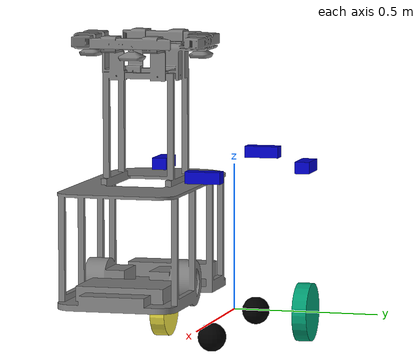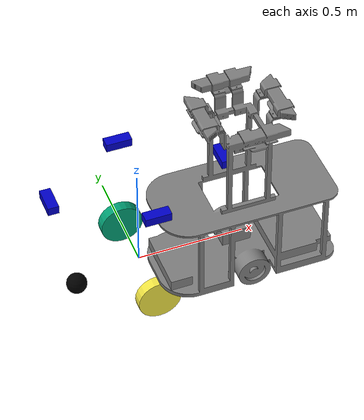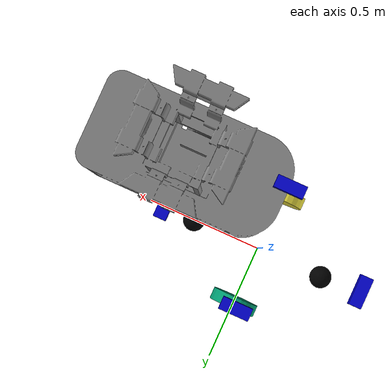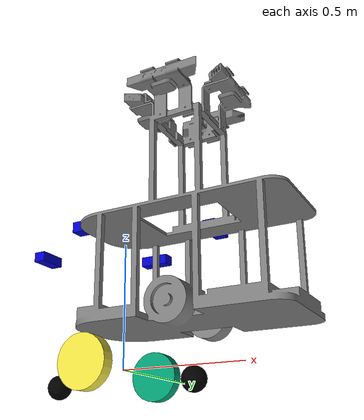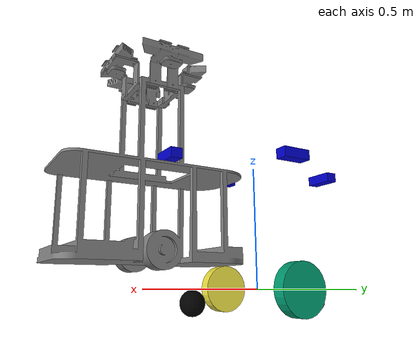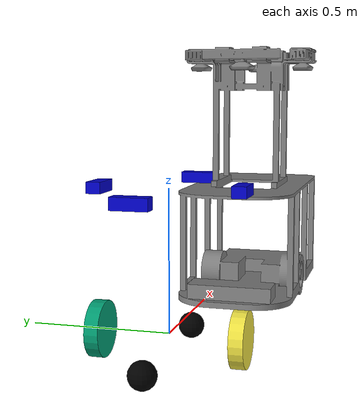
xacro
<?xml version="1.0"?>
<robot xmlns:xacro="http://www.ros.org/wiki/xacro" name="agv_robot">

  <xacro:property name="wheel_radius" value="0.1" />
  <xacro:property name="wheel_width" value="0.05" />

  <link name="base_footprint"/>
  <joint name="base_joint" type="fixed">
    <parent link="base_footprint"/>
    <child link="base_link"/>
    <origin xyz="0 0 0.1" rpy="0 0 0"/>
  </joint>

  <link name="base_link">
    <visual>
      <origin xyz="0 0 0" rpy="0 0 0"/>
      <geometry><mesh filename="file://$(find agv_sim)/meshes/agv_acs.stl" scale="0.001 0.001 0.001"/></geometry>
      <material name="grey"><color rgba="0.5 0.5 0.5 1.0"/></material>
    </visual>
    <collision><geometry><box size="0.8 0.5 0.3"/></geometry></collision>
    <inertial><mass value="25.0"/><inertia ixx="0.5" ixy="0.0" ixz="0.0" iyy="0.5" iyz="0.0" izz="0.5"/></inertial>
  </link>

  <xacro:macro name="wheel" params="name y">
    <link name="${name}_link">
      <visual><origin xyz="0 0 0" rpy="${pi/2} 0 0"/><geometry><cylinder radius="${wheel_radius}" length="${wheel_width}"/></geometry></visual>
      <collision><origin xyz="0 0 0" rpy="${pi/2} 0 0"/><geometry><cylinder radius="${wheel_radius}" length="${wheel_width}"/></geometry></collision>
      <inertial><mass value="2.0"/><inertia ixx="0.01" ixy="0" ixz="0" iyy="0.01" iyz="0" izz="0.01"/></inertial>
    </link>
    <joint name="${name}_joint" type="continuous">
      <parent link="base_link"/><child link="${name}_link"/><origin xyz="0 ${y} -0.1" rpy="0 0 0"/><axis xyz="0 1 0"/>
    </joint>
  </xacro:macro>

  <xacro:wheel name="left_wheel"  y="0.25"/>
  <xacro:wheel name="right_wheel" y="-0.25"/>

  <xacro:macro name="caster" params="name x">
    <link name="${name}_link">
      <visual><geometry><sphere radius="0.048"/></geometry><material name="black"><color rgba="0 0 0 1"/></material></visual>
      <collision><geometry><sphere radius="0.048"/></geometry></collision>
      <inertial><mass value="0.5"/><inertia ixx="0.001" ixy="0" ixz="0" iyy="0.001" iyz="0" izz="0.001"/></inertial>
    </link>
    <joint name="${name}_joint" type="fixed">
      <parent link="base_link"/><child link="${name}_link"/><origin xyz="${x} 0 -0.15" rpy="0 0 0"/>
    </joint>
    <gazebo reference="${name}_link">
      <mu1>0.0</mu1><mu2>0.0</mu2>
      <material>Gazebo/Black</material>
    </gazebo>
  </xacro:macro>

  <xacro:caster name="front_caster" x="0.3"/>
  <xacro:caster name="rear_caster" x="-0.3"/>

  <!-- Parent frame untuk semua kamera -->
  <link name="camera_link"/>
  <joint name="camera_joint" type="fixed">
    <parent link="base_link"/>
    <child link="camera_link"/>
    <origin xyz="0 0 0" rpy="0 0 0"/>
  </joint>

  <xacro:macro name="kinect_v1" params="name x y yaw topic">
    <!-- Link fisik kamera -->
    <link name="${name}_link">
      <visual><geometry><box size="0.05 0.12 0.04"/></geometry><material name="blue"><color rgba="0 0 0.8 1"/></material></visual>
    </link>
    <joint name="${name}_joint" type="fixed">
      <parent link="camera_link"/><child link="${name}_link"/><origin xyz="${x} ${y} 0.4" rpy="0 0 ${yaw}"/>
    </joint>

    <!-- Optical frame: rotasi dari link frame (x-forward,y-left,z-up) ke optical (z-forward,x-right,y-down) -->
    <link name="${name}_optical"/>
    <joint name="${name}_optical_joint" type="fixed">
      <parent link="${name}_link"/>
      <child link="${name}_optical"/>
      <origin xyz="0 0 0" rpy="${-pi/2} 0 ${-pi/2}"/>
    </joint>

    <gazebo reference="${name}_link">
      <sensor name="${name}" type="depth_camera">
        <update_rate>20</update_rate>
        <topic>${topic}</topic>
        <!-- Publish point cloud dalam optical frame agar TF2 bisa transform ke base_link -->
        <gz_frame_id>${name}_optical</gz_frame_id>
        <camera><horizontal_fov>1.047</horizontal_fov><image><width>640</width><height>480</height></image><clip><near>0.5</near><far>8.0</far></clip></camera>
      </sensor>
    </gazebo>
  </xacro:macro>

  <xacro:kinect_v1 name="camera_link_1" x="0.4"  y="0.0"  yaw="0.0"     topic="cloud_in1"/>
  <xacro:kinect_v1 name="camera_link_2" x="-0.4" y="0.0"  yaw="3.1415"  topic="cloud_in2"/>
  <xacro:kinect_v1 name="camera_link_3" x="0.0"  y="0.25" yaw="1.5708"  topic="cloud_in3"/>
  <xacro:kinect_v1 name="camera_link_4" x="0.0"  y="-0.25" yaw="-1.5708" topic="cloud_in4"/>

  <gazebo>
    <plugin filename="gz-sim-diff-drive-system" name="gz::sim::systems::DiffDrive">
      <left_joint>left_wheel_joint</left_joint>
      <right_joint>right_wheel_joint</right_joint>
      <wheel_separation>0.5</wheel_separation>
      <wheel_radius>0.1</wheel_radius>
      <topic>/cmd_vel</topic>
      <odom_topic>/odom</odom_topic>
      <tf_topic>/tf</tf_topic>
      <frame_id>odom</frame_id>
      <child_frame_id>base_footprint</child_frame_id>
    </plugin>
    <plugin filename="gz-sim-joint-state-publisher-system" name="gz::sim::systems::JointStatePublisher">
      <topic>/joint_states</topic>
    </plugin>
  </gazebo>
</robot>
